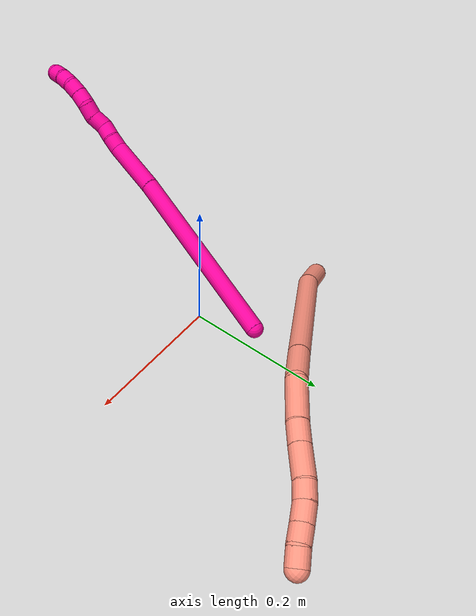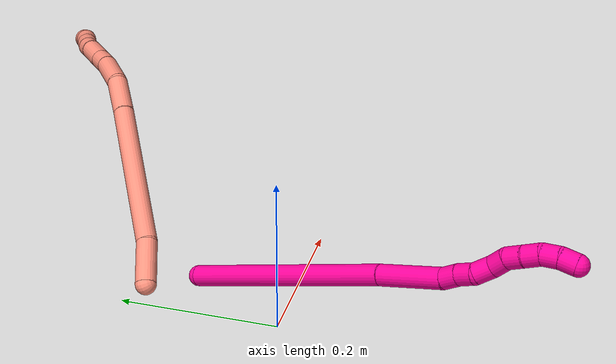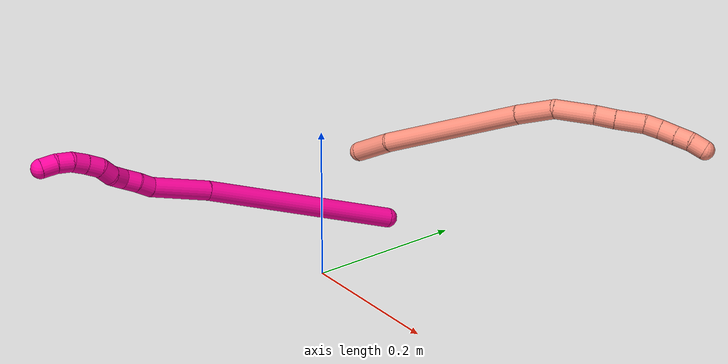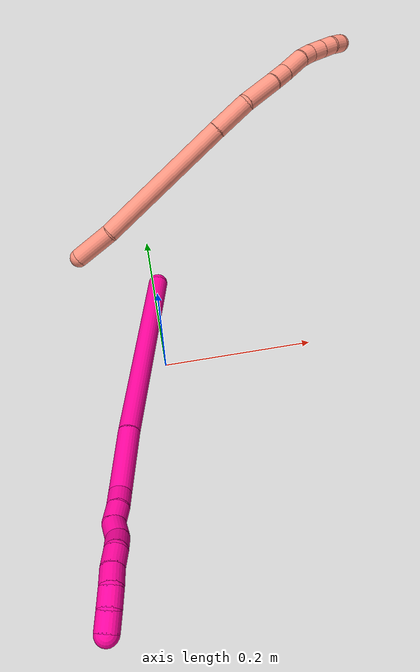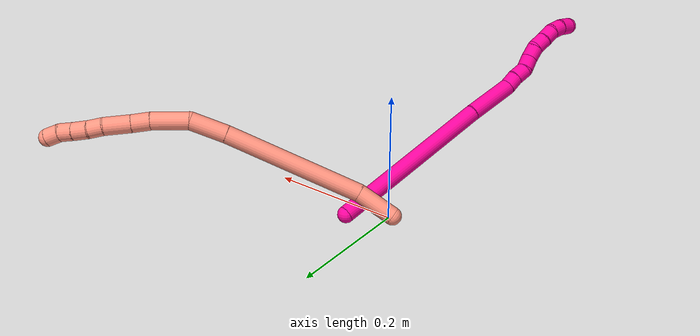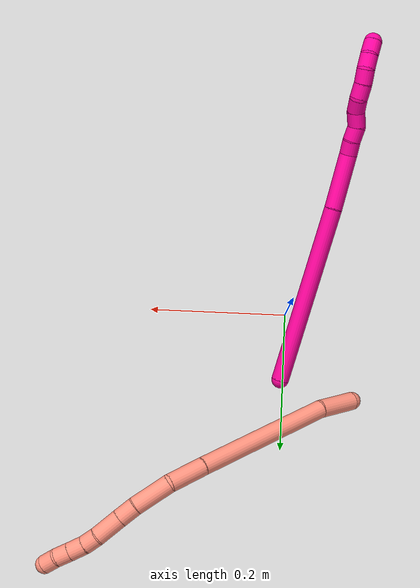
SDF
<sdf version="1.7">
 <world name="default">
  <model name="16">
   <static>0</static>
   <link name="16">
    <collision name="collision-cylinder-e_1_1_4">
     <pose>0.026883 -0.004138 -0.001615 1.9428 1.40705 1.78553</pose>
     <geometry><cylinder><radius>0.0125</radius><length>0.054494</length></cylinder></geometry>
     <surface>
      <friction><ode><mu>1.16</mu><mu2>1.16</mu2><slip1>0</slip1><slip2>0</slip2></ode></friction>
      <contact><ode><kp>1e+06</kp><kd>1</kd><max_vel>0</max_vel><min_depth>0.001</min_depth></ode></contact>
     </surface>
    </collision>
    <visual name="visual-cylinder-e_1_1_4">
     <pose>0.026883 -0.004138 -0.001615 1.9428 1.40705 1.78553</pose>
     <geometry><cylinder><radius>0.0125</radius><length>0.054494</length></cylinder></geometry>
     <material><ambient>1 0.576471 0.494118 1</ambient></material>
    </visual>
    <collision name="collision-cylinder-e_2_4_5">
     <pose>0.149163 -0.021708 0.010985 0.7571 1.3686 0.627503</pose>
     <geometry><cylinder><radius>0.0125</radius><length>0.194763</length></cylinder></geometry>
     <surface>
      <friction><ode><mu>1.16</mu><mu2>1.16</mu2><slip1>0</slip1><slip2>0</slip2></ode></friction>
      <contact><ode><kp>1e+06</kp><kd>1</kd><max_vel>0</max_vel><min_depth>0.001</min_depth></ode></contact>
     </surface>
    </collision>
    <visual name="visual-cylinder-e_2_4_5">
     <pose>0.149163 -0.021708 0.010985 0.7571 1.3686 0.627503</pose>
     <geometry><cylinder><radius>0.0125</radius><length>0.194763</length></cylinder></geometry>
     <material><ambient>1 0.576471 0.494118 1</ambient></material>
    </visual>
    <collision name="collision-cylinder-e_3_5_6">
     <pose>0.269792 -0.037565 0.030169 0.454026 1.35505 0.367513</pose>
     <geometry><cylinder><radius>0.0125</radius><length>0.051661</length></cylinder></geometry>
     <surface>
      <friction><ode><mu>1.16</mu><mu2>1.16</mu2><slip1>0</slip1><slip2>0</slip2></ode></friction>
      <contact><ode><kp>1e+06</kp><kd>1</kd><max_vel>0</max_vel><min_depth>0.001</min_depth></ode></contact>
     </surface>
    </collision>
    <visual name="visual-cylinder-e_3_5_6">
     <pose>0.269792 -0.037565 0.030169 0.454026 1.35505 0.367513</pose>
     <geometry><cylinder><radius>0.0125</radius><length>0.051661</length></cylinder></geometry>
     <material><ambient>1 0.576471 0.494118 1</ambient></material>
    </visual>
    <collision name="collision-cylinder-e_4_6_7">
     <pose>0.318237 -0.036027 0.047076 -0.320548 1.07424 -0.191952</pose>
     <geometry><cylinder><radius>0.0125</radius><length>0.052805</length></cylinder></geometry>
     <surface>
      <friction><ode><mu>1.16</mu><mu2>1.16</mu2><slip1>0</slip1><slip2>0</slip2></ode></friction>
      <contact><ode><kp>1e+06</kp><kd>1</kd><max_vel>0</max_vel><min_depth>0.001</min_depth></ode></contact>
     </surface>
    </collision>
    <visual name="visual-cylinder-e_4_6_7">
     <pose>0.318237 -0.036027 0.047076 -0.320548 1.07424 -0.191952</pose>
     <geometry><cylinder><radius>0.0125</radius><length>0.052805</length></cylinder></geometry>
     <material><ambient>1 0.576471 0.494118 1</ambient></material>
    </visual>
    <collision name="collision-cylinder-e_5_7_8">
     <pose>0.351895 -0.029571 0.066151 -0.336001 0.944217 -0.172771</pose>
     <geometry><cylinder><radius>0.0125</radius><length>0.025786</length></cylinder></geometry>
     <surface>
      <friction><ode><mu>1.16</mu><mu2>1.16</mu2><slip1>0</slip1><slip2>0</slip2></ode></friction>
      <contact><ode><kp>1e+06</kp><kd>1</kd><max_vel>0</max_vel><min_depth>0.001</min_depth></ode></contact>
     </surface>
    </collision>
    <visual name="visual-cylinder-e_5_7_8">
     <pose>0.351895 -0.029571 0.066151 -0.336001 0.944217 -0.172771</pose>
     <geometry><cylinder><radius>0.0125</radius><length>0.025786</length></cylinder></geometry>
     <material><ambient>1 0.576471 0.494118 1</ambient></material>
    </visual>
    <collision name="collision-cylinder-e_6_8_9">
     <pose>0.377889 -0.02438 0.083594 -0.25607 0.97017 -0.135507</pose>
     <geometry><cylinder><radius>0.0125</radius><length>0.037699</length></cylinder></geometry>
     <surface>
      <friction><ode><mu>1.16</mu><mu2>1.16</mu2><slip1>0</slip1><slip2>0</slip2></ode></friction>
      <contact><ode><kp>1e+06</kp><kd>1</kd><max_vel>0</max_vel><min_depth>0.001</min_depth></ode></contact>
     </surface>
    </collision>
    <visual name="visual-cylinder-e_6_8_9">
     <pose>0.377889 -0.02438 0.083594 -0.25607 0.97017 -0.135507</pose>
     <geometry><cylinder><radius>0.0125</radius><length>0.037699</length></cylinder></geometry>
     <material><ambient>1 0.576471 0.494118 1</ambient></material>
    </visual>
    <collision name="collision-cylinder-e_7_9_10">
     <pose>0.401423 -0.018424 0.099422 -0.532887 0.894176 -0.260246</pose>
     <geometry><cylinder><radius>0.0125</radius><length>0.020478</length></cylinder></geometry>
     <surface>
      <friction><ode><mu>1.16</mu><mu2>1.16</mu2><slip1>0</slip1><slip2>0</slip2></ode></friction>
      <contact><ode><kp>1e+06</kp><kd>1</kd><max_vel>0</max_vel><min_depth>0.001</min_depth></ode></contact>
     </surface>
    </collision>
    <visual name="visual-cylinder-e_7_9_10">
     <pose>0.401423 -0.018424 0.099422 -0.532887 0.894176 -0.260246</pose>
     <geometry><cylinder><radius>0.0125</radius><length>0.020478</length></cylinder></geometry>
     <material><ambient>1 0.576471 0.494118 1</ambient></material>
    </visual>
    <collision name="collision-cylinder-e_8_10_11">
     <pose>0.418538 -0.010957 0.109478 -0.748415 0.975317 -0.410704</pose>
     <geometry><cylinder><radius>0.0125</radius><length>0.02206</length></cylinder></geometry>
     <surface>
      <friction><ode><mu>1.16</mu><mu2>1.16</mu2><slip1>0</slip1><slip2>0</slip2></ode></friction>
      <contact><ode><kp>1e+06</kp><kd>1</kd><max_vel>0</max_vel><min_depth>0.001</min_depth></ode></contact>
     </surface>
    </collision>
    <visual name="visual-cylinder-e_8_10_11">
     <pose>0.418538 -0.010957 0.109478 -0.748415 0.975317 -0.410704</pose>
     <geometry><cylinder><radius>0.0125</radius><length>0.02206</length></cylinder></geometry>
     <material><ambient>1 0.576471 0.494118 1</ambient></material>
    </visual>
    <collision name="collision-cylinder-e_9_11_12">
     <pose>0.43615 -0.003028 0.117823 -0.773145 1.01003 -0.442692</pose>
     <geometry><cylinder><radius>0.0125</radius><length>0.020029</length></cylinder></geometry>
     <surface>
      <friction><ode><mu>1.16</mu><mu2>1.16</mu2><slip1>0</slip1><slip2>0</slip2></ode></friction>
      <contact><ode><kp>1e+06</kp><kd>1</kd><max_vel>0</max_vel><min_depth>0.001</min_depth></ode></contact>
     </surface>
    </collision>
    <visual name="visual-cylinder-e_9_11_12">
     <pose>0.43615 -0.003028 0.117823 -0.773145 1.01003 -0.442692</pose>
     <geometry><cylinder><radius>0.0125</radius><length>0.020029</length></cylinder></geometry>
     <material><ambient>1 0.576471 0.494118 1</ambient></material>
    </visual>
    <collision name="collision-cylinder-e_10_12_2">
     <pose>0.451575 0.005734 0.126985 -0.755817 0.756921 -0.313125</pose>
     <geometry><cylinder><radius>0.0125</radius><length>0.020225</length></cylinder></geometry>
     <surface>
      <friction><ode><mu>1.16</mu><mu2>1.16</mu2><slip1>0</slip1><slip2>0</slip2></ode></friction>
      <contact><ode><kp>1e+06</kp><kd>1</kd><max_vel>0</max_vel><min_depth>0.001</min_depth></ode></contact>
     </surface>
    </collision>
    <visual name="visual-cylinder-e_10_12_2">
     <pose>0.451575 0.005734 0.126985 -0.755817 0.756921 -0.313125</pose>
     <geometry><cylinder><radius>0.0125</radius><length>0.020225</length></cylinder></geometry>
     <material><ambient>1 0.576471 0.494118 1</ambient></material>
    </visual>
    <collision name="collision-sphere-2">
     <pose>0.458519 0.010776 0.132334 0 -0 0</pose>
     <geometry><sphere><radius>0.0125</radius></sphere></geometry>
     <surface>
      <friction><ode><mu>1.16</mu><mu2>1.16</mu2><slip1>0</slip1><slip2>0</slip2></ode></friction>
      <contact><ode><kp>1e+06</kp><kd>1</kd><max_vel>0</max_vel><min_depth>0.001</min_depth></ode></contact>
     </surface>
    </collision>
    <visual name="visual-sphere-2">
     <pose>0.458519 0.010776 0.132334 0 -0 0</pose>
     <geometry><sphere><radius>0.0125</radius></sphere></geometry>
     <material><ambient>1 0.576471 0.494118 1</ambient></material>
    </visual>
    <collision name="collision-sphere-12">
     <pose>0.444631 0.000692 0.121635 0 -0 0</pose>
     <geometry><sphere><radius>0.0125</radius></sphere></geometry>
     <surface>
      <friction><ode><mu>1.16</mu><mu2>1.16</mu2><slip1>0</slip1><slip2>0</slip2></ode></friction>
      <contact><ode><kp>1e+06</kp><kd>1</kd><max_vel>0</max_vel><min_depth>0.001</min_depth></ode></contact>
     </surface>
    </collision>
    <visual name="visual-sphere-12">
     <pose>0.444631 0.000692 0.121635 0 -0 0</pose>
     <geometry><sphere><radius>0.0125</radius></sphere></geometry>
     <material><ambient>1 0.576471 0.494118 1</ambient></material>
    </visual>
    <collision name="collision-sphere-11">
     <pose>0.427669 -0.006747 0.114011 0 -0 0</pose>
     <geometry><sphere><radius>0.0125</radius></sphere></geometry>
     <surface>
      <friction><ode><mu>1.16</mu><mu2>1.16</mu2><slip1>0</slip1><slip2>0</slip2></ode></friction>
      <contact><ode><kp>1e+06</kp><kd>1</kd><max_vel>0</max_vel><min_depth>0.001</min_depth></ode></contact>
     </surface>
    </collision>
    <visual name="visual-sphere-11">
     <pose>0.427669 -0.006747 0.114011 0 -0 0</pose>
     <geometry><sphere><radius>0.0125</radius></sphere></geometry>
     <material><ambient>1 0.576471 0.494118 1</ambient></material>
    </visual>
    <collision name="collision-sphere-10">
     <pose>0.409406 -0.015167 0.104944 0 -0 0</pose>
     <geometry><sphere><radius>0.0125</radius></sphere></geometry>
     <surface>
      <friction><ode><mu>1.16</mu><mu2>1.16</mu2><slip1>0</slip1><slip2>0</slip2></ode></friction>
      <contact><ode><kp>1e+06</kp><kd>1</kd><max_vel>0</max_vel><min_depth>0.001</min_depth></ode></contact>
     </surface>
    </collision>
    <visual name="visual-sphere-10">
     <pose>0.409406 -0.015167 0.104944 0 -0 0</pose>
     <geometry><sphere><radius>0.0125</radius></sphere></geometry>
     <material><ambient>1 0.576471 0.494118 1</ambient></material>
    </visual>
    <collision name="collision-sphere-9">
     <pose>0.39344 -0.021681 0.0939 0 -0 0</pose>
     <geometry><sphere><radius>0.0125</radius></sphere></geometry>
     <surface>
      <friction><ode><mu>1.16</mu><mu2>1.16</mu2><slip1>0</slip1><slip2>0</slip2></ode></friction>
      <contact><ode><kp>1e+06</kp><kd>1</kd><max_vel>0</max_vel><min_depth>0.001</min_depth></ode></contact>
     </surface>
    </collision>
    <visual name="visual-sphere-9">
     <pose>0.39344 -0.021681 0.0939 0 -0 0</pose>
     <geometry><sphere><radius>0.0125</radius></sphere></geometry>
     <material><ambient>1 0.576471 0.494118 1</ambient></material>
    </visual>
    <collision name="collision-sphere-4">
     <pose>0.053765 -0.008276 -0.003229 0 -0 0</pose>
     <geometry><sphere><radius>0.0125</radius></sphere></geometry>
     <surface>
      <friction><ode><mu>1.16</mu><mu2>1.16</mu2><slip1>0</slip1><slip2>0</slip2></ode></friction>
      <contact><ode><kp>1e+06</kp><kd>1</kd><max_vel>0</max_vel><min_depth>0.001</min_depth></ode></contact>
     </surface>
    </collision>
    <visual name="visual-sphere-4">
     <pose>0.053765 -0.008276 -0.003229 0 -0 0</pose>
     <geometry><sphere><radius>0.0125</radius></sphere></geometry>
     <material><ambient>1 0.576471 0.494118 1</ambient></material>
    </visual>
    <collision name="collision-sphere-1">
     <geometry><sphere><radius>0.0125</radius></sphere></geometry>
     <surface>
      <friction><ode><mu>1.16</mu><mu2>1.16</mu2><slip1>0</slip1><slip2>0</slip2></ode></friction>
      <contact><ode><kp>1e+06</kp><kd>1</kd><max_vel>0</max_vel><min_depth>0.001</min_depth></ode></contact>
     </surface>
    </collision>
    <visual name="visual-sphere-1">
     <geometry><sphere><radius>0.0125</radius></sphere></geometry>
     <material><ambient>1 0.576471 0.494118 1</ambient></material>
    </visual>
    <collision name="collision-sphere-8">
     <pose>0.362339 -0.027078 0.073289 0 -0 0</pose>
     <geometry><sphere><radius>0.0125</radius></sphere></geometry>
     <surface>
      <friction><ode><mu>1.16</mu><mu2>1.16</mu2><slip1>0</slip1><slip2>0</slip2></ode></friction>
      <contact><ode><kp>1e+06</kp><kd>1</kd><max_vel>0</max_vel><min_depth>0.001</min_depth></ode></contact>
     </surface>
    </collision>
    <visual name="visual-sphere-8">
     <pose>0.362339 -0.027078 0.073289 0 -0 0</pose>
     <geometry><sphere><radius>0.0125</radius></sphere></geometry>
     <material><ambient>1 0.576471 0.494118 1</ambient></material>
    </visual>
    <collision name="collision-sphere-5">
     <pose>0.24456 -0.035139 0.025199 0 -0 0</pose>
     <geometry><sphere><radius>0.0125</radius></sphere></geometry>
     <surface>
      <friction><ode><mu>1.16</mu><mu2>1.16</mu2><slip1>0</slip1><slip2>0</slip2></ode></friction>
      <contact><ode><kp>1e+06</kp><kd>1</kd><max_vel>0</max_vel><min_depth>0.001</min_depth></ode></contact>
     </surface>
    </collision>
    <visual name="visual-sphere-5">
     <pose>0.24456 -0.035139 0.025199 0 -0 0</pose>
     <geometry><sphere><radius>0.0125</radius></sphere></geometry>
     <material><ambient>1 0.576471 0.494118 1</ambient></material>
    </visual>
    <collision name="collision-sphere-6">
     <pose>0.295023 -0.03999 0.035138 0 -0 0</pose>
     <geometry><sphere><radius>0.0125</radius></sphere></geometry>
     <surface>
      <friction><ode><mu>1.16</mu><mu2>1.16</mu2><slip1>0</slip1><slip2>0</slip2></ode></friction>
      <contact><ode><kp>1e+06</kp><kd>1</kd><max_vel>0</max_vel><min_depth>0.001</min_depth></ode></contact>
     </surface>
    </collision>
    <visual name="visual-sphere-6">
     <pose>0.295023 -0.03999 0.035138 0 -0 0</pose>
     <geometry><sphere><radius>0.0125</radius></sphere></geometry>
     <material><ambient>1 0.576471 0.494118 1</ambient></material>
    </visual>
    <collision name="collision-sphere-7">
     <pose>0.341451 -0.032063 0.059014 0 -0 0</pose>
     <geometry><sphere><radius>0.0125</radius></sphere></geometry>
     <surface>
      <friction><ode><mu>1.16</mu><mu2>1.16</mu2><slip1>0</slip1><slip2>0</slip2></ode></friction>
      <contact><ode><kp>1e+06</kp><kd>1</kd><max_vel>0</max_vel><min_depth>0.001</min_depth></ode></contact>
     </surface>
    </collision>
    <visual name="visual-sphere-7">
     <pose>0.341451 -0.032063 0.059014 0 -0 0</pose>
     <geometry><sphere><radius>0.0125</radius></sphere></geometry>
     <material><ambient>1 0.576471 0.494118 1</ambient></material>
    </visual>
    <inertial>
     <pose>0.239801 -0.021083 0.040665 0 -0 0</pose>
     <mass>0.5</mass>
     <inertia>
      <ixx>0.000228</ixx>
      <ixy>0</ixy>
      <ixz>0</ixz>
      <iyy>0.000744</iyy>
      <iyz>0</iyz>
      <izz>-0.000569</izz>
     </inertia>
    </inertial>
   </link>
   <pose>-0.092616 0.128626 0.10024 -2.05111 -0.348588 0.285916</pose>
  </model>
  <model name="18">
   <static>0</static>
   <link name="18">
    <collision name="collision-cylinder-e_1_1_4">
     <pose>0.048922 -0.109706 -0.047757 1.98137 0.388133 0.582752</pose>
     <geometry><cylinder><radius>0.0125</radius><length>0.258531</length></cylinder></geometry>
     <surface>
      <friction><ode><mu>1.16</mu><mu2>1.16</mu2><slip1>0</slip1><slip2>0</slip2></ode></friction>
      <contact><ode><kp>1e+06</kp><kd>1</kd><max_vel>0</max_vel><min_depth>0.001</min_depth></ode></contact>
     </surface>
    </collision>
    <visual name="visual-cylinder-e_1_1_4">
     <pose>0.048922 -0.109706 -0.047757 1.98137 0.388133 0.582752</pose>
     <geometry><cylinder><radius>0.0125</radius><length>0.258531</length></cylinder></geometry>
     <material><ambient>1 0.007843 0.615686 1</ambient></material>
    </visual>
    <collision name="collision-cylinder-e_2_4_5">
     <pose>0.111711 -0.253939 -0.107294 1.89961 0.363265 0.502578</pose>
     <geometry><cylinder><radius>0.0125</radius><length>0.078055</length></cylinder></geometry>
     <surface>
      <friction><ode><mu>1.16</mu><mu2>1.16</mu2><slip1>0</slip1><slip2>0</slip2></ode></friction>
      <contact><ode><kp>1e+06</kp><kd>1</kd><max_vel>0</max_vel><min_depth>0.001</min_depth></ode></contact>
     </surface>
    </collision>
    <visual name="visual-cylinder-e_2_4_5">
     <pose>0.111711 -0.253939 -0.107294 1.89961 0.363265 0.502578</pose>
     <geometry><cylinder><radius>0.0125</radius><length>0.078055</length></cylinder></geometry>
     <material><ambient>1 0.007843 0.615686 1</ambient></material>
    </visual>
    <collision name="collision-cylinder-e_3_5_6">
     <pose>0.128634 -0.296394 -0.124587 2.17838 0.306401 0.574524</pose>
     <geometry><cylinder><radius>0.0125</radius><length>0.020259</length></cylinder></geometry>
     <surface>
      <friction><ode><mu>1.16</mu><mu2>1.16</mu2><slip1>0</slip1><slip2>0</slip2></ode></friction>
      <contact><ode><kp>1e+06</kp><kd>1</kd><max_vel>0</max_vel><min_depth>0.001</min_depth></ode></contact>
     </surface>
    </collision>
    <visual name="visual-cylinder-e_3_5_6">
     <pose>0.128634 -0.296394 -0.124587 2.17838 0.306401 0.574524</pose>
     <geometry><cylinder><radius>0.0125</radius><length>0.020259</length></cylinder></geometry>
     <material><ambient>1 0.007843 0.615686 1</ambient></material>
    </visual>
    <collision name="collision-cylinder-e_4_6_7">
     <pose>0.135966 -0.312483 -0.134539 2.06895 0.431439 0.706348</pose>
     <geometry><cylinder><radius>0.0125</radius><length>0.020453</length></cylinder></geometry>
     <surface>
      <friction><ode><mu>1.16</mu><mu2>1.16</mu2><slip1>0</slip1><slip2>0</slip2></ode></friction>
      <contact><ode><kp>1e+06</kp><kd>1</kd><max_vel>0</max_vel><min_depth>0.001</min_depth></ode></contact>
     </surface>
    </collision>
    <visual name="visual-cylinder-e_4_6_7">
     <pose>0.135966 -0.312483 -0.134539 2.06895 0.431439 0.706348</pose>
     <geometry><cylinder><radius>0.0125</radius><length>0.020453</length></cylinder></geometry>
     <material><ambient>1 0.007843 0.615686 1</ambient></material>
    </visual>
    <collision name="collision-cylinder-e_5_7_8">
     <pose>0.140391 -0.329555 -0.145223 2.1821 0.013631 0.026198</pose>
     <geometry><cylinder><radius>0.0125</radius><length>0.021766</length></cylinder></geometry>
     <surface>
      <friction><ode><mu>1.16</mu><mu2>1.16</mu2><slip1>0</slip1><slip2>0</slip2></ode></friction>
      <contact><ode><kp>1e+06</kp><kd>1</kd><max_vel>0</max_vel><min_depth>0.001</min_depth></ode></contact>
     </surface>
    </collision>
    <visual name="visual-cylinder-e_5_7_8">
     <pose>0.140391 -0.329555 -0.145223 2.1821 0.013631 0.026198</pose>
     <geometry><cylinder><radius>0.0125</radius><length>0.021766</length></cylinder></geometry>
     <material><ambient>1 0.007843 0.615686 1</ambient></material>
    </visual>
    <collision name="collision-cylinder-e_6_8_9">
     <pose>0.142879 -0.344905 -0.158906 2.42805 0.233595 0.609952</pose>
     <geometry><cylinder><radius>0.0125</radius><length>0.020222</length></cylinder></geometry>
     <surface>
      <friction><ode><mu>1.16</mu><mu2>1.16</mu2><slip1>0</slip1><slip2>0</slip2></ode></friction>
      <contact><ode><kp>1e+06</kp><kd>1</kd><max_vel>0</max_vel><min_depth>0.001</min_depth></ode></contact>
     </surface>
    </collision>
    <visual name="visual-cylinder-e_6_8_9">
     <pose>0.142879 -0.344905 -0.158906 2.42805 0.233595 0.609952</pose>
     <geometry><cylinder><radius>0.0125</radius><length>0.020222</length></cylinder></geometry>
     <material><ambient>1 0.007843 0.615686 1</ambient></material>
    </visual>
    <collision name="collision-cylinder-e_7_9_10">
     <pose>0.14898 -0.359658 -0.171008 2.08211 0.37566 0.627725</pose>
     <geometry><cylinder><radius>0.0125</radius><length>0.0205</length></cylinder></geometry>
     <surface>
      <friction><ode><mu>1.16</mu><mu2>1.16</mu2><slip1>0</slip1><slip2>0</slip2></ode></friction>
      <contact><ode><kp>1e+06</kp><kd>1</kd><max_vel>0</max_vel><min_depth>0.001</min_depth></ode></contact>
     </surface>
    </collision>
    <visual name="visual-cylinder-e_7_9_10">
     <pose>0.14898 -0.359658 -0.171008 2.08211 0.37566 0.627725</pose>
     <geometry><cylinder><radius>0.0125</radius><length>0.0205</length></cylinder></geometry>
     <material><ambient>1 0.007843 0.615686 1</ambient></material>
    </visual>
    <collision name="collision-cylinder-e_8_10_11">
     <pose>0.155427 -0.376723 -0.17993 2.02353 0.269352 0.426581</pose>
     <geometry><cylinder><radius>0.0125</radius><length>0.020186</length></cylinder></geometry>
     <surface>
      <friction><ode><mu>1.16</mu><mu2>1.16</mu2><slip1>0</slip1><slip2>0</slip2></ode></friction>
      <contact><ode><kp>1e+06</kp><kd>1</kd><max_vel>0</max_vel><min_depth>0.001</min_depth></ode></contact>
     </surface>
    </collision>
    <visual name="visual-cylinder-e_8_10_11">
     <pose>0.155427 -0.376723 -0.17993 2.02353 0.269352 0.426581</pose>
     <geometry><cylinder><radius>0.0125</radius><length>0.020186</length></cylinder></geometry>
     <material><ambient>1 0.007843 0.615686 1</ambient></material>
    </visual>
    <collision name="collision-cylinder-e_9_11_12">
     <pose>0.161423 -0.394824 -0.185496 1.71002 0.337202 0.386577</pose>
     <geometry><cylinder><radius>0.0125</radius><length>0.020013</length></cylinder></geometry>
     <surface>
      <friction><ode><mu>1.16</mu><mu2>1.16</mu2><slip1>0</slip1><slip2>0</slip2></ode></friction>
      <contact><ode><kp>1e+06</kp><kd>1</kd><max_vel>0</max_vel><min_depth>0.001</min_depth></ode></contact>
     </surface>
    </collision>
    <visual name="visual-cylinder-e_9_11_12">
     <pose>0.161423 -0.394824 -0.185496 1.71002 0.337202 0.386577</pose>
     <geometry><cylinder><radius>0.0125</radius><length>0.020013</length></cylinder></geometry>
     <material><ambient>1 0.007843 0.615686 1</ambient></material>
    </visual>
    <collision name="collision-cylinder-e_10_12_2">
     <pose>0.168216 -0.413506 -0.185822 1.46568 0.355308 0.320431</pose>
     <geometry><cylinder><radius>0.0125</radius><length>0.020015</length></cylinder></geometry>
     <surface>
      <friction><ode><mu>1.16</mu><mu2>1.16</mu2><slip1>0</slip1><slip2>0</slip2></ode></friction>
      <contact><ode><kp>1e+06</kp><kd>1</kd><max_vel>0</max_vel><min_depth>0.001</min_depth></ode></contact>
     </surface>
    </collision>
    <visual name="visual-cylinder-e_10_12_2">
     <pose>0.168216 -0.413506 -0.185822 1.46568 0.355308 0.320431</pose>
     <geometry><cylinder><radius>0.0125</radius><length>0.020015</length></cylinder></geometry>
     <material><ambient>1 0.007843 0.615686 1</ambient></material>
    </visual>
    <collision name="collision-sphere-2">
     <pose>0.171697 -0.422837 -0.184838 0 -0 0</pose>
     <geometry><sphere><radius>0.0125</radius></sphere></geometry>
     <surface>
      <friction><ode><mu>1.16</mu><mu2>1.16</mu2><slip1>0</slip1><slip2>0</slip2></ode></friction>
      <contact><ode><kp>1e+06</kp><kd>1</kd><max_vel>0</max_vel><min_depth>0.001</min_depth></ode></contact>
     </surface>
    </collision>
    <visual name="visual-sphere-2">
     <pose>0.171697 -0.422837 -0.184838 0 -0 0</pose>
     <geometry><sphere><radius>0.0125</radius></sphere></geometry>
     <material><ambient>1 0.007843 0.615686 1</ambient></material>
    </visual>
    <collision name="collision-sphere-12">
     <pose>0.164734 -0.404176 -0.186807 0 -0 0</pose>
     <geometry><sphere><radius>0.0125</radius></sphere></geometry>
     <surface>
      <friction><ode><mu>1.16</mu><mu2>1.16</mu2><slip1>0</slip1><slip2>0</slip2></ode></friction>
      <contact><ode><kp>1e+06</kp><kd>1</kd><max_vel>0</max_vel><min_depth>0.001</min_depth></ode></contact>
     </surface>
    </collision>
    <visual name="visual-sphere-12">
     <pose>0.164734 -0.404176 -0.186807 0 -0 0</pose>
     <geometry><sphere><radius>0.0125</radius></sphere></geometry>
     <material><ambient>1 0.007843 0.615686 1</ambient></material>
    </visual>
    <collision name="collision-sphere-11">
     <pose>0.158113 -0.385472 -0.184186 0 -0 0</pose>
     <geometry><sphere><radius>0.0125</radius></sphere></geometry>
     <surface>
      <friction><ode><mu>1.16</mu><mu2>1.16</mu2><slip1>0</slip1><slip2>0</slip2></ode></friction>
      <contact><ode><kp>1e+06</kp><kd>1</kd><max_vel>0</max_vel><min_depth>0.001</min_depth></ode></contact>
     </surface>
    </collision>
    <visual name="visual-sphere-11">
     <pose>0.158113 -0.385472 -0.184186 0 -0 0</pose>
     <geometry><sphere><radius>0.0125</radius></sphere></geometry>
     <material><ambient>1 0.007843 0.615686 1</ambient></material>
    </visual>
    <collision name="collision-sphere-10">
     <pose>0.152741 -0.367974 -0.175674 0 -0 0</pose>
     <geometry><sphere><radius>0.0125</radius></sphere></geometry>
     <surface>
      <friction><ode><mu>1.16</mu><mu2>1.16</mu2><slip1>0</slip1><slip2>0</slip2></ode></friction>
      <contact><ode><kp>1e+06</kp><kd>1</kd><max_vel>0</max_vel><min_depth>0.001</min_depth></ode></contact>
     </surface>
    </collision>
    <visual name="visual-sphere-10">
     <pose>0.152741 -0.367974 -0.175674 0 -0 0</pose>
     <geometry><sphere><radius>0.0125</radius></sphere></geometry>
     <material><ambient>1 0.007843 0.615686 1</ambient></material>
    </visual>
    <collision name="collision-sphere-9">
     <pose>0.14522 -0.351343 -0.166343 0 -0 0</pose>
     <geometry><sphere><radius>0.0125</radius></sphere></geometry>
     <surface>
      <friction><ode><mu>1.16</mu><mu2>1.16</mu2><slip1>0</slip1><slip2>0</slip2></ode></friction>
      <contact><ode><kp>1e+06</kp><kd>1</kd><max_vel>0</max_vel><min_depth>0.001</min_depth></ode></contact>
     </surface>
    </collision>
    <visual name="visual-sphere-9">
     <pose>0.14522 -0.351343 -0.166343 0 -0 0</pose>
     <geometry><sphere><radius>0.0125</radius></sphere></geometry>
     <material><ambient>1 0.007843 0.615686 1</ambient></material>
    </visual>
    <collision name="collision-sphere-4">
     <pose>0.097844 -0.219412 -0.095514 0 -0 0</pose>
     <geometry><sphere><radius>0.0125</radius></sphere></geometry>
     <surface>
      <friction><ode><mu>1.16</mu><mu2>1.16</mu2><slip1>0</slip1><slip2>0</slip2></ode></friction>
      <contact><ode><kp>1e+06</kp><kd>1</kd><max_vel>0</max_vel><min_depth>0.001</min_depth></ode></contact>
     </surface>
    </collision>
    <visual name="visual-sphere-4">
     <pose>0.097844 -0.219412 -0.095514 0 -0 0</pose>
     <geometry><sphere><radius>0.0125</radius></sphere></geometry>
     <material><ambient>1 0.007843 0.615686 1</ambient></material>
    </visual>
    <collision name="collision-sphere-1">
     <geometry><sphere><radius>0.0125</radius></sphere></geometry>
     <surface>
      <friction><ode><mu>1.16</mu><mu2>1.16</mu2><slip1>0</slip1><slip2>0</slip2></ode></friction>
      <contact><ode><kp>1e+06</kp><kd>1</kd><max_vel>0</max_vel><min_depth>0.001</min_depth></ode></contact>
     </surface>
    </collision>
    <visual name="visual-sphere-1">
     <geometry><sphere><radius>0.0125</radius></sphere></geometry>
     <material><ambient>1 0.007843 0.615686 1</ambient></material>
    </visual>
    <collision name="collision-sphere-8">
     <pose>0.140539 -0.338467 -0.151469 0 -0 0</pose>
     <geometry><sphere><radius>0.0125</radius></sphere></geometry>
     <surface>
      <friction><ode><mu>1.16</mu><mu2>1.16</mu2><slip1>0</slip1><slip2>0</slip2></ode></friction>
      <contact><ode><kp>1e+06</kp><kd>1</kd><max_vel>0</max_vel><min_depth>0.001</min_depth></ode></contact>
     </surface>
    </collision>
    <visual name="visual-sphere-8">
     <pose>0.140539 -0.338467 -0.151469 0 -0 0</pose>
     <geometry><sphere><radius>0.0125</radius></sphere></geometry>
     <material><ambient>1 0.007843 0.615686 1</ambient></material>
    </visual>
    <collision name="collision-sphere-5">
     <pose>0.125579 -0.288465 -0.119074 0 -0 0</pose>
     <geometry><sphere><radius>0.0125</radius></sphere></geometry>
     <surface>
      <friction><ode><mu>1.16</mu><mu2>1.16</mu2><slip1>0</slip1><slip2>0</slip2></ode></friction>
      <contact><ode><kp>1e+06</kp><kd>1</kd><max_vel>0</max_vel><min_depth>0.001</min_depth></ode></contact>
     </surface>
    </collision>
    <visual name="visual-sphere-5">
     <pose>0.125579 -0.288465 -0.119074 0 -0 0</pose>
     <geometry><sphere><radius>0.0125</radius></sphere></geometry>
     <material><ambient>1 0.007843 0.615686 1</ambient></material>
    </visual>
    <collision name="collision-sphere-6">
     <pose>0.131689 -0.304323 -0.130101 0 -0 0</pose>
     <geometry><sphere><radius>0.0125</radius></sphere></geometry>
     <surface>
      <friction><ode><mu>1.16</mu><mu2>1.16</mu2><slip1>0</slip1><slip2>0</slip2></ode></friction>
      <contact><ode><kp>1e+06</kp><kd>1</kd><max_vel>0</max_vel><min_depth>0.001</min_depth></ode></contact>
     </surface>
    </collision>
    <visual name="visual-sphere-6">
     <pose>0.131689 -0.304323 -0.130101 0 -0 0</pose>
     <geometry><sphere><radius>0.0125</radius></sphere></geometry>
     <material><ambient>1 0.007843 0.615686 1</ambient></material>
    </visual>
    <collision name="collision-sphere-7">
     <pose>0.140242 -0.320644 -0.138978 0 -0 0</pose>
     <geometry><sphere><radius>0.0125</radius></sphere></geometry>
     <surface>
      <friction><ode><mu>1.16</mu><mu2>1.16</mu2><slip1>0</slip1><slip2>0</slip2></ode></friction>
      <contact><ode><kp>1e+06</kp><kd>1</kd><max_vel>0</max_vel><min_depth>0.001</min_depth></ode></contact>
     </surface>
    </collision>
    <visual name="visual-sphere-7">
     <pose>0.140242 -0.320644 -0.138978 0 -0 0</pose>
     <geometry><sphere><radius>0.0125</radius></sphere></geometry>
     <material><ambient>1 0.007843 0.615686 1</ambient></material>
    </visual>
    <inertial>
     <pose>0.090977 -0.211766 -0.093882 0 -0 0</pose>
     <mass>0.5</mass>
     <inertia>
      <ixx>0.001942</ixx>
      <ixy>0</ixy>
      <ixz>0</ixz>
      <iyy>0.000515</iyy>
      <iyz>0</iyz>
      <izz>0.000697</izz>
     </inertia>
    </inertial>
   </link>
   <pose>0.00603 0.099574 0.052433 3.06661 -0.072967 -3.00869</pose>
  </model>
 </world>
</sdf>
